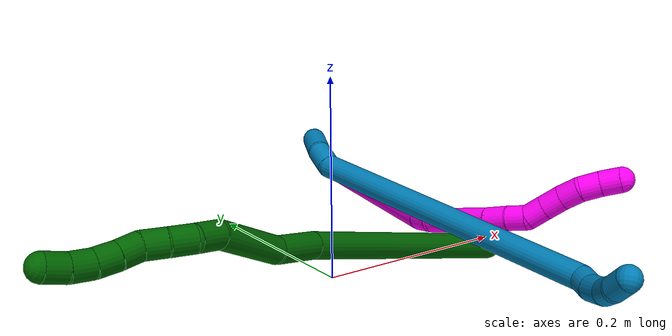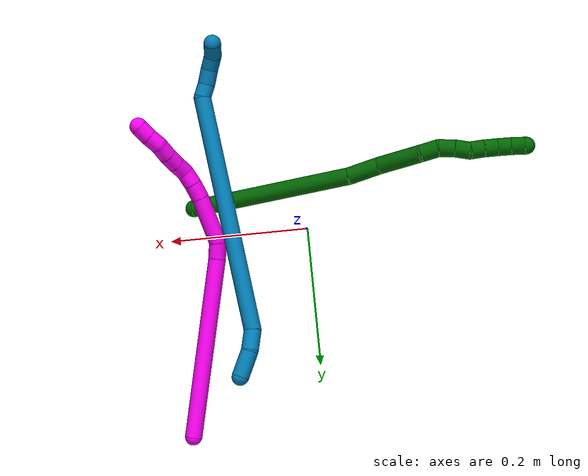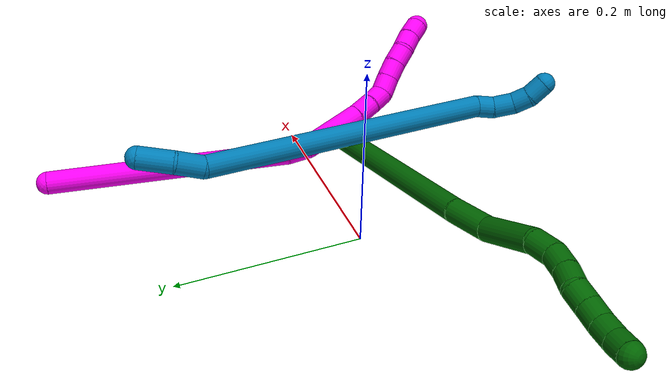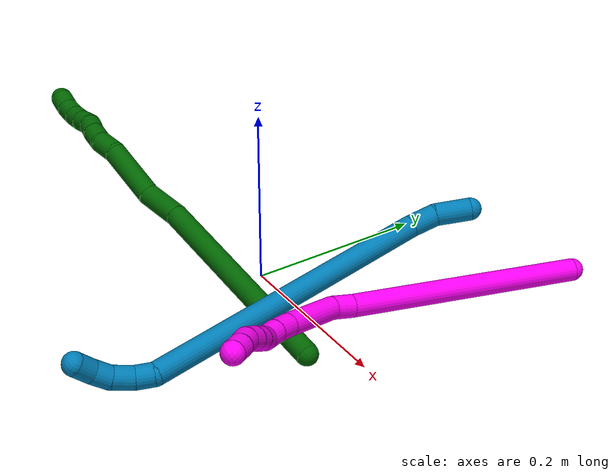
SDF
<sdf version="1.7">
 <world name="default">
  <model name="6">
   <static>0</static>
   <link name="6">
    <collision name="collision-cylinder-e_1_1_4">
     <pose>-0.021526 -0.000852 0.11647 0.007319 -0.182757 -0.000671</pose>
     <geometry><cylinder><radius>0.0125</radius><length>0.236892</length></cylinder></geometry>
     <surface>
      <friction><ode><mu>1.16</mu><mu2>1.16</mu2><slip1>0</slip1><slip2>0</slip2></ode></friction>
      <contact><ode><kp>1e+06</kp><kd>1</kd><max_vel>0</max_vel><min_depth>0.001</min_depth></ode></contact>
     </surface>
    </collision>
    <visual name="visual-cylinder-e_1_1_4">
     <pose>-0.021526 -0.000852 0.11647 0.007319 -0.182757 -0.000671</pose>
     <geometry><cylinder><radius>0.0125</radius><length>0.236892</length></cylinder></geometry>
     <material><ambient>0 0.392157 0.003922 1</ambient></material>
    </visual>
    <collision name="collision-cylinder-e_2_4_5">
     <pose>-0.046514 -0.00506 0.255559 0.147279 -0.150236 -0.011104</pose>
     <geometry><cylinder><radius>0.0125</radius><length>0.046253</length></cylinder></geometry>
     <surface>
      <friction><ode><mu>1.16</mu><mu2>1.16</mu2><slip1>0</slip1><slip2>0</slip2></ode></friction>
      <contact><ode><kp>1e+06</kp><kd>1</kd><max_vel>0</max_vel><min_depth>0.001</min_depth></ode></contact>
     </surface>
    </collision>
    <visual name="visual-cylinder-e_2_4_5">
     <pose>-0.046514 -0.00506 0.255559 0.147279 -0.150236 -0.011104</pose>
     <geometry><cylinder><radius>0.0125</radius><length>0.046253</length></cylinder></geometry>
     <material><ambient>0 0.392157 0.003922 1</ambient></material>
    </visual>
    <collision name="collision-cylinder-e_3_5_6">
     <pose>-0.049133 -0.005904 0.311502 -0.075248 0.025203 -0.000949</pose>
     <geometry><cylinder><radius>0.0125</radius><length>0.06686</length></cylinder></geometry>
     <surface>
      <friction><ode><mu>1.16</mu><mu2>1.16</mu2><slip1>0</slip1><slip2>0</slip2></ode></friction>
      <contact><ode><kp>1e+06</kp><kd>1</kd><max_vel>0</max_vel><min_depth>0.001</min_depth></ode></contact>
     </surface>
    </collision>
    <visual name="visual-cylinder-e_3_5_6">
     <pose>-0.049133 -0.005904 0.311502 -0.075248 0.025203 -0.000949</pose>
     <geometry><cylinder><radius>0.0125</radius><length>0.06686</length></cylinder></geometry>
     <material><ambient>0 0.392157 0.003922 1</ambient></material>
    </visual>
    <collision name="collision-cylinder-e_4_6_7">
     <pose>-0.050978 -0.005318 0.357113 0.155558 -0.212839 -0.01665</pose>
     <geometry><cylinder><radius>0.0125</radius><length>0.025447</length></cylinder></geometry>
     <surface>
      <friction><ode><mu>1.16</mu><mu2>1.16</mu2><slip1>0</slip1><slip2>0</slip2></ode></friction>
      <contact><ode><kp>1e+06</kp><kd>1</kd><max_vel>0</max_vel><min_depth>0.001</min_depth></ode></contact>
     </surface>
    </collision>
    <visual name="visual-cylinder-e_4_6_7">
     <pose>-0.050978 -0.005318 0.357113 0.155558 -0.212839 -0.01665</pose>
     <geometry><cylinder><radius>0.0125</radius><length>0.025447</length></cylinder></geometry>
     <material><ambient>0 0.392157 0.003922 1</ambient></material>
    </visual>
    <collision name="collision-cylinder-e_5_7_8">
     <pose>-0.058863 -0.006761 0.379531 -0.047705 -0.473453 0.011511</pose>
     <geometry><cylinder><radius>0.0125</radius><length>0.022796</length></cylinder></geometry>
     <surface>
      <friction><ode><mu>1.16</mu><mu2>1.16</mu2><slip1>0</slip1><slip2>0</slip2></ode></friction>
      <contact><ode><kp>1e+06</kp><kd>1</kd><max_vel>0</max_vel><min_depth>0.001</min_depth></ode></contact>
     </surface>
    </collision>
    <visual name="visual-cylinder-e_5_7_8">
     <pose>-0.058863 -0.006761 0.379531 -0.047705 -0.473453 0.011511</pose>
     <geometry><cylinder><radius>0.0125</radius><length>0.022796</length></cylinder></geometry>
     <material><ambient>0 0.392157 0.003922 1</ambient></material>
    </visual>
    <collision name="collision-cylinder-e_6_8_9">
     <pose>-0.069798 -0.004979 0.398463 -0.14654 -0.572903 0.043234</pose>
     <geometry><cylinder><radius>0.0125</radius><length>0.02117</length></cylinder></geometry>
     <surface>
      <friction><ode><mu>1.16</mu><mu2>1.16</mu2><slip1>0</slip1><slip2>0</slip2></ode></friction>
      <contact><ode><kp>1e+06</kp><kd>1</kd><max_vel>0</max_vel><min_depth>0.001</min_depth></ode></contact>
     </surface>
    </collision>
    <visual name="visual-cylinder-e_6_8_9">
     <pose>-0.069798 -0.004979 0.398463 -0.14654 -0.572903 0.043234</pose>
     <geometry><cylinder><radius>0.0125</radius><length>0.02117</length></cylinder></geometry>
     <material><ambient>0 0.392157 0.003922 1</ambient></material>
    </visual>
    <collision name="collision-cylinder-e_7_9_10">
     <pose>-0.080562 -0.005859 0.415634 0.254659 -0.526386 -0.068962</pose>
     <geometry><cylinder><radius>0.0125</radius><length>0.020008</length></cylinder></geometry>
     <surface>
      <friction><ode><mu>1.16</mu><mu2>1.16</mu2><slip1>0</slip1><slip2>0</slip2></ode></friction>
      <contact><ode><kp>1e+06</kp><kd>1</kd><max_vel>0</max_vel><min_depth>0.001</min_depth></ode></contact>
     </surface>
    </collision>
    <visual name="visual-cylinder-e_7_9_10">
     <pose>-0.080562 -0.005859 0.415634 0.254659 -0.526386 -0.068962</pose>
     <geometry><cylinder><radius>0.0125</radius><length>0.020008</length></cylinder></geometry>
     <material><ambient>0 0.392157 0.003922 1</ambient></material>
    </visual>
    <collision name="collision-cylinder-e_8_10_11">
     <pose>-0.090555 -0.0094 0.432595 0.157246 -0.518882 -0.041817</pose>
     <geometry><cylinder><radius>0.0125</radius><length>0.020032</length></cylinder></geometry>
     <surface>
      <friction><ode><mu>1.16</mu><mu2>1.16</mu2><slip1>0</slip1><slip2>0</slip2></ode></friction>
      <contact><ode><kp>1e+06</kp><kd>1</kd><max_vel>0</max_vel><min_depth>0.001</min_depth></ode></contact>
     </surface>
    </collision>
    <visual name="visual-cylinder-e_8_10_11">
     <pose>-0.090555 -0.0094 0.432595 0.157246 -0.518882 -0.041817</pose>
     <geometry><cylinder><radius>0.0125</radius><length>0.020032</length></cylinder></geometry>
     <material><ambient>0 0.392157 0.003922 1</ambient></material>
    </visual>
    <collision name="collision-cylinder-e_9_11_12">
     <pose>-0.099534 -0.011015 0.450497 0.02711 -0.406694 -0.00559</pose>
     <geometry><cylinder><radius>0.0125</radius><length>0.020284</length></cylinder></geometry>
     <surface>
      <friction><ode><mu>1.16</mu><mu2>1.16</mu2><slip1>0</slip1><slip2>0</slip2></ode></friction>
      <contact><ode><kp>1e+06</kp><kd>1</kd><max_vel>0</max_vel><min_depth>0.001</min_depth></ode></contact>
     </surface>
    </collision>
    <visual name="visual-cylinder-e_9_11_12">
     <pose>-0.099534 -0.011015 0.450497 0.02711 -0.406694 -0.00559</pose>
     <geometry><cylinder><radius>0.0125</radius><length>0.020284</length></cylinder></geometry>
     <material><ambient>0 0.392157 0.003922 1</ambient></material>
    </visual>
    <collision name="collision-cylinder-e_10_12_2">
     <pose>-0.106477 -0.010053 0.469428 -0.125568 -0.293515 0.018585</pose>
     <geometry><cylinder><radius>0.0125</radius><length>0.020259</length></cylinder></geometry>
     <surface>
      <friction><ode><mu>1.16</mu><mu2>1.16</mu2><slip1>0</slip1><slip2>0</slip2></ode></friction>
      <contact><ode><kp>1e+06</kp><kd>1</kd><max_vel>0</max_vel><min_depth>0.001</min_depth></ode></contact>
     </surface>
    </collision>
    <visual name="visual-cylinder-e_10_12_2">
     <pose>-0.106477 -0.010053 0.469428 -0.125568 -0.293515 0.018585</pose>
     <geometry><cylinder><radius>0.0125</radius><length>0.020259</length></cylinder></geometry>
     <material><ambient>0 0.392157 0.003922 1</ambient></material>
    </visual>
    <collision name="collision-sphere-2">
     <pose>-0.109407 -0.008838 0.479048 0 -0 0</pose>
     <geometry><sphere><radius>0.0125</radius></sphere></geometry>
     <surface>
      <friction><ode><mu>1.16</mu><mu2>1.16</mu2><slip1>0</slip1><slip2>0</slip2></ode></friction>
      <contact><ode><kp>1e+06</kp><kd>1</kd><max_vel>0</max_vel><min_depth>0.001</min_depth></ode></contact>
     </surface>
    </collision>
    <visual name="visual-sphere-2">
     <pose>-0.109407 -0.008838 0.479048 0 -0 0</pose>
     <geometry><sphere><radius>0.0125</radius></sphere></geometry>
     <material><ambient>0 0.392157 0.003922 1</ambient></material>
    </visual>
    <collision name="collision-sphere-12">
     <pose>-0.103546 -0.011267 0.459808 0 -0 0</pose>
     <geometry><sphere><radius>0.0125</radius></sphere></geometry>
     <surface>
      <friction><ode><mu>1.16</mu><mu2>1.16</mu2><slip1>0</slip1><slip2>0</slip2></ode></friction>
      <contact><ode><kp>1e+06</kp><kd>1</kd><max_vel>0</max_vel><min_depth>0.001</min_depth></ode></contact>
     </surface>
    </collision>
    <visual name="visual-sphere-12">
     <pose>-0.103546 -0.011267 0.459808 0 -0 0</pose>
     <geometry><sphere><radius>0.0125</radius></sphere></geometry>
     <material><ambient>0 0.392157 0.003922 1</ambient></material>
    </visual>
    <collision name="collision-sphere-11">
     <pose>-0.095522 -0.010762 0.441186 0 -0 0</pose>
     <geometry><sphere><radius>0.0125</radius></sphere></geometry>
     <surface>
      <friction><ode><mu>1.16</mu><mu2>1.16</mu2><slip1>0</slip1><slip2>0</slip2></ode></friction>
      <contact><ode><kp>1e+06</kp><kd>1</kd><max_vel>0</max_vel><min_depth>0.001</min_depth></ode></contact>
     </surface>
    </collision>
    <visual name="visual-sphere-11">
     <pose>-0.095522 -0.010762 0.441186 0 -0 0</pose>
     <geometry><sphere><radius>0.0125</radius></sphere></geometry>
     <material><ambient>0 0.392157 0.003922 1</ambient></material>
    </visual>
    <collision name="collision-sphere-10">
     <pose>-0.085588 -0.008038 0.424005 0 -0 0</pose>
     <geometry><sphere><radius>0.0125</radius></sphere></geometry>
     <surface>
      <friction><ode><mu>1.16</mu><mu2>1.16</mu2><slip1>0</slip1><slip2>0</slip2></ode></friction>
      <contact><ode><kp>1e+06</kp><kd>1</kd><max_vel>0</max_vel><min_depth>0.001</min_depth></ode></contact>
     </surface>
    </collision>
    <visual name="visual-sphere-10">
     <pose>-0.085588 -0.008038 0.424005 0 -0 0</pose>
     <geometry><sphere><radius>0.0125</radius></sphere></geometry>
     <material><ambient>0 0.392157 0.003922 1</ambient></material>
    </visual>
    <collision name="collision-sphere-9">
     <pose>-0.075536 -0.00368 0.407263 0 -0 0</pose>
     <geometry><sphere><radius>0.0125</radius></sphere></geometry>
     <surface>
      <friction><ode><mu>1.16</mu><mu2>1.16</mu2><slip1>0</slip1><slip2>0</slip2></ode></friction>
      <contact><ode><kp>1e+06</kp><kd>1</kd><max_vel>0</max_vel><min_depth>0.001</min_depth></ode></contact>
     </surface>
    </collision>
    <visual name="visual-sphere-9">
     <pose>-0.075536 -0.00368 0.407263 0 -0 0</pose>
     <geometry><sphere><radius>0.0125</radius></sphere></geometry>
     <material><ambient>0 0.392157 0.003922 1</ambient></material>
    </visual>
    <collision name="collision-sphere-4">
     <pose>-0.043053 -0.001705 0.23294 0 -0 0</pose>
     <geometry><sphere><radius>0.0125</radius></sphere></geometry>
     <surface>
      <friction><ode><mu>1.16</mu><mu2>1.16</mu2><slip1>0</slip1><slip2>0</slip2></ode></friction>
      <contact><ode><kp>1e+06</kp><kd>1</kd><max_vel>0</max_vel><min_depth>0.001</min_depth></ode></contact>
     </surface>
    </collision>
    <visual name="visual-sphere-4">
     <pose>-0.043053 -0.001705 0.23294 0 -0 0</pose>
     <geometry><sphere><radius>0.0125</radius></sphere></geometry>
     <material><ambient>0 0.392157 0.003922 1</ambient></material>
    </visual>
    <collision name="collision-sphere-1">
     <geometry><sphere><radius>0.0125</radius></sphere></geometry>
     <surface>
      <friction><ode><mu>1.16</mu><mu2>1.16</mu2><slip1>0</slip1><slip2>0</slip2></ode></friction>
      <contact><ode><kp>1e+06</kp><kd>1</kd><max_vel>0</max_vel><min_depth>0.001</min_depth></ode></contact>
     </surface>
    </collision>
    <visual name="visual-sphere-1">
     <geometry><sphere><radius>0.0125</radius></sphere></geometry>
     <material><ambient>0 0.392157 0.003922 1</ambient></material>
    </visual>
    <collision name="collision-sphere-8">
     <pose>-0.06406 -0.006277 0.389664 0 -0 0</pose>
     <geometry><sphere><radius>0.0125</radius></sphere></geometry>
     <surface>
      <friction><ode><mu>1.16</mu><mu2>1.16</mu2><slip1>0</slip1><slip2>0</slip2></ode></friction>
      <contact><ode><kp>1e+06</kp><kd>1</kd><max_vel>0</max_vel><min_depth>0.001</min_depth></ode></contact>
     </surface>
    </collision>
    <visual name="visual-sphere-8">
     <pose>-0.06406 -0.006277 0.389664 0 -0 0</pose>
     <geometry><sphere><radius>0.0125</radius></sphere></geometry>
     <material><ambient>0 0.392157 0.003922 1</ambient></material>
    </visual>
    <collision name="collision-sphere-5">
     <pose>-0.049976 -0.008416 0.278177 0 -0 0</pose>
     <geometry><sphere><radius>0.0125</radius></sphere></geometry>
     <surface>
      <friction><ode><mu>1.16</mu><mu2>1.16</mu2><slip1>0</slip1><slip2>0</slip2></ode></friction>
      <contact><ode><kp>1e+06</kp><kd>1</kd><max_vel>0</max_vel><min_depth>0.001</min_depth></ode></contact>
     </surface>
    </collision>
    <visual name="visual-sphere-5">
     <pose>-0.049976 -0.008416 0.278177 0 -0 0</pose>
     <geometry><sphere><radius>0.0125</radius></sphere></geometry>
     <material><ambient>0 0.392157 0.003922 1</ambient></material>
    </visual>
    <collision name="collision-sphere-6">
     <pose>-0.048291 -0.003391 0.344827 0 -0 0</pose>
     <geometry><sphere><radius>0.0125</radius></sphere></geometry>
     <surface>
      <friction><ode><mu>1.16</mu><mu2>1.16</mu2><slip1>0</slip1><slip2>0</slip2></ode></friction>
      <contact><ode><kp>1e+06</kp><kd>1</kd><max_vel>0</max_vel><min_depth>0.001</min_depth></ode></contact>
     </surface>
    </collision>
    <visual name="visual-sphere-6">
     <pose>-0.048291 -0.003391 0.344827 0 -0 0</pose>
     <geometry><sphere><radius>0.0125</radius></sphere></geometry>
     <material><ambient>0 0.392157 0.003922 1</ambient></material>
    </visual>
    <collision name="collision-sphere-7">
     <pose>-0.053666 -0.007245 0.369399 0 -0 0</pose>
     <geometry><sphere><radius>0.0125</radius></sphere></geometry>
     <surface>
      <friction><ode><mu>1.16</mu><mu2>1.16</mu2><slip1>0</slip1><slip2>0</slip2></ode></friction>
      <contact><ode><kp>1e+06</kp><kd>1</kd><max_vel>0</max_vel><min_depth>0.001</min_depth></ode></contact>
     </surface>
    </collision>
    <visual name="visual-sphere-7">
     <pose>-0.053666 -0.007245 0.369399 0 -0 0</pose>
     <geometry><sphere><radius>0.0125</radius></sphere></geometry>
     <material><ambient>0 0.392157 0.003922 1</ambient></material>
    </visual>
    <inertial>
     <pose>-0.044509 -0.003916 0.244085 0 -0 0</pose>
     <mass>0.5</mass>
     <inertia>
      <ixx>0.001137</ixx>
      <ixy>0</ixy>
      <ixz>0</ixz>
      <iyy>0.001164</iyy>
      <iyz>0</iyz>
      <izz>0.000254</izz>
     </inertia>
    </inertial>
   </link>
   <pose>0.161756 -0.045143 0.011546 1.00038 -0.789061 -0.928569</pose>
  </model>
  <model name="9">
   <static>0</static>
   <link name="9">
    <collision name="collision-cylinder-e_1_1_4">
     <pose>-0.006062 -0.014725 -0.011557 2.23624 -0.313209 -0.627828</pose>
     <geometry><cylinder><radius>0.0125</radius><length>0.039351</length></cylinder></geometry>
     <surface>
      <friction><ode><mu>1.16</mu><mu2>1.16</mu2><slip1>0</slip1><slip2>0</slip2></ode></friction>
      <contact><ode><kp>1e+06</kp><kd>1</kd><max_vel>0</max_vel><min_depth>0.001</min_depth></ode></contact>
     </surface>
    </collision>
    <visual name="visual-cylinder-e_1_1_4">
     <pose>-0.006062 -0.014725 -0.011557 2.23624 -0.313209 -0.627828</pose>
     <geometry><cylinder><radius>0.0125</radius><length>0.039351</length></cylinder></geometry>
     <material><ambient>0 0.490196 0.709804 1</ambient></material>
    </visual>
    <collision name="collision-cylinder-e_2_4_5">
     <pose>-0.012639 -0.040957 -0.033009 2.28097 -0.033903 -0.073837</pose>
     <geometry><cylinder><radius>0.0125</radius><length>0.030372</length></cylinder></geometry>
     <surface>
      <friction><ode><mu>1.16</mu><mu2>1.16</mu2><slip1>0</slip1><slip2>0</slip2></ode></friction>
      <contact><ode><kp>1e+06</kp><kd>1</kd><max_vel>0</max_vel><min_depth>0.001</min_depth></ode></contact>
     </surface>
    </collision>
    <visual name="visual-cylinder-e_2_4_5">
     <pose>-0.012639 -0.040957 -0.033009 2.28097 -0.033903 -0.073837</pose>
     <geometry><cylinder><radius>0.0125</radius><length>0.030372</length></cylinder></geometry>
     <material><ambient>0 0.490196 0.709804 1</ambient></material>
    </visual>
    <collision name="collision-cylinder-e_3_5_6">
     <pose>0.01409 -0.211308 -0.103295 1.93411 0.158966 0.229973</pose>
     <geometry><cylinder><radius>0.0125</radius><length>0.344211</length></cylinder></geometry>
     <surface>
      <friction><ode><mu>1.16</mu><mu2>1.16</mu2><slip1>0</slip1><slip2>0</slip2></ode></friction>
      <contact><ode><kp>1e+06</kp><kd>1</kd><max_vel>0</max_vel><min_depth>0.001</min_depth></ode></contact>
     </surface>
    </collision>
    <visual name="visual-cylinder-e_3_5_6">
     <pose>0.01409 -0.211308 -0.103295 1.93411 0.158966 0.229973</pose>
     <geometry><cylinder><radius>0.0125</radius><length>0.344211</length></cylinder></geometry>
     <material><ambient>0 0.490196 0.709804 1</ambient></material>
    </visual>
    <collision name="collision-cylinder-e_4_6_7">
     <pose>0.038399 -0.378078 -0.169158 2.17504 -0.295773 -0.553201</pose>
     <geometry><cylinder><radius>0.0125</radius><length>0.020139</length></cylinder></geometry>
     <surface>
      <friction><ode><mu>1.16</mu><mu2>1.16</mu2><slip1>0</slip1><slip2>0</slip2></ode></friction>
      <contact><ode><kp>1e+06</kp><kd>1</kd><max_vel>0</max_vel><min_depth>0.001</min_depth></ode></contact>
     </surface>
    </collision>
    <visual name="visual-cylinder-e_4_6_7">
     <pose>0.038399 -0.378078 -0.169158 2.17504 -0.295773 -0.553201</pose>
     <geometry><cylinder><radius>0.0125</radius><length>0.020139</length></cylinder></geometry>
     <material><ambient>0 0.490196 0.709804 1</ambient></material>
    </visual>
    <collision name="collision-cylinder-e_5_7_8">
     <pose>0.031158 -0.396637 -0.178032 1.88039 -0.368088 -0.499335</pose>
     <geometry><cylinder><radius>0.0125</radius><length>0.02393</length></cylinder></geometry>
     <surface>
      <friction><ode><mu>1.16</mu><mu2>1.16</mu2><slip1>0</slip1><slip2>0</slip2></ode></friction>
      <contact><ode><kp>1e+06</kp><kd>1</kd><max_vel>0</max_vel><min_depth>0.001</min_depth></ode></contact>
     </surface>
    </collision>
    <visual name="visual-cylinder-e_5_7_8">
     <pose>0.031158 -0.396637 -0.178032 1.88039 -0.368088 -0.499335</pose>
     <geometry><cylinder><radius>0.0125</radius><length>0.02393</length></cylinder></geometry>
     <material><ambient>0 0.490196 0.709804 1</ambient></material>
    </visual>
    <collision name="collision-cylinder-e_6_8_9">
     <pose>0.021405 -0.415819 -0.181642 1.59524 -0.567173 -0.580441</pose>
     <geometry><cylinder><radius>0.0125</radius><length>0.02028</length></cylinder></geometry>
     <surface>
      <friction><ode><mu>1.16</mu><mu2>1.16</mu2><slip1>0</slip1><slip2>0</slip2></ode></friction>
      <contact><ode><kp>1e+06</kp><kd>1</kd><max_vel>0</max_vel><min_depth>0.001</min_depth></ode></contact>
     </surface>
    </collision>
    <visual name="visual-cylinder-e_6_8_9">
     <pose>0.021405 -0.415819 -0.181642 1.59524 -0.567173 -0.580441</pose>
     <geometry><cylinder><radius>0.0125</radius><length>0.02028</length></cylinder></geometry>
     <material><ambient>0 0.490196 0.709804 1</ambient></material>
    </visual>
    <collision name="collision-cylinder-e_7_9_2">
     <pose>0.011682 -0.433932 -0.178991 1.28019 -0.404659 -0.303183</pose>
     <geometry><cylinder><radius>0.0125</radius><length>0.021717</length></cylinder></geometry>
     <surface>
      <friction><ode><mu>1.16</mu><mu2>1.16</mu2><slip1>0</slip1><slip2>0</slip2></ode></friction>
      <contact><ode><kp>1e+06</kp><kd>1</kd><max_vel>0</max_vel><min_depth>0.001</min_depth></ode></contact>
     </surface>
    </collision>
    <visual name="visual-cylinder-e_7_9_2">
     <pose>0.011682 -0.433932 -0.178991 1.28019 -0.404659 -0.303183</pose>
     <geometry><cylinder><radius>0.0125</radius><length>0.021717</length></cylinder></geometry>
     <material><ambient>0 0.490196 0.709804 1</ambient></material>
    </visual>
    <collision name="collision-sphere-2">
     <pose>0.007407 -0.443495 -0.176131 0 -0 0</pose>
     <geometry><sphere><radius>0.0125</radius></sphere></geometry>
     <surface>
      <friction><ode><mu>1.16</mu><mu2>1.16</mu2><slip1>0</slip1><slip2>0</slip2></ode></friction>
      <contact><ode><kp>1e+06</kp><kd>1</kd><max_vel>0</max_vel><min_depth>0.001</min_depth></ode></contact>
     </surface>
    </collision>
    <visual name="visual-sphere-2">
     <pose>0.007407 -0.443495 -0.176131 0 -0 0</pose>
     <geometry><sphere><radius>0.0125</radius></sphere></geometry>
     <material><ambient>0 0.490196 0.709804 1</ambient></material>
    </visual>
    <collision name="collision-sphere-9">
     <pose>0.015958 -0.424369 -0.181851 0 -0 0</pose>
     <geometry><sphere><radius>0.0125</radius></sphere></geometry>
     <surface>
      <friction><ode><mu>1.16</mu><mu2>1.16</mu2><slip1>0</slip1><slip2>0</slip2></ode></friction>
      <contact><ode><kp>1e+06</kp><kd>1</kd><max_vel>0</max_vel><min_depth>0.001</min_depth></ode></contact>
     </surface>
    </collision>
    <visual name="visual-sphere-9">
     <pose>0.015958 -0.424369 -0.181851 0 -0 0</pose>
     <geometry><sphere><radius>0.0125</radius></sphere></geometry>
     <material><ambient>0 0.490196 0.709804 1</ambient></material>
    </visual>
    <collision name="collision-sphere-4">
     <pose>-0.012124 -0.029449 -0.023113 0 -0 0</pose>
     <geometry><sphere><radius>0.0125</radius></sphere></geometry>
     <surface>
      <friction><ode><mu>1.16</mu><mu2>1.16</mu2><slip1>0</slip1><slip2>0</slip2></ode></friction>
      <contact><ode><kp>1e+06</kp><kd>1</kd><max_vel>0</max_vel><min_depth>0.001</min_depth></ode></contact>
     </surface>
    </collision>
    <visual name="visual-sphere-4">
     <pose>-0.012124 -0.029449 -0.023113 0 -0 0</pose>
     <geometry><sphere><radius>0.0125</radius></sphere></geometry>
     <material><ambient>0 0.490196 0.709804 1</ambient></material>
    </visual>
    <collision name="collision-sphere-1">
     <geometry><sphere><radius>0.0125</radius></sphere></geometry>
     <surface>
      <friction><ode><mu>1.16</mu><mu2>1.16</mu2><slip1>0</slip1><slip2>0</slip2></ode></friction>
      <contact><ode><kp>1e+06</kp><kd>1</kd><max_vel>0</max_vel><min_depth>0.001</min_depth></ode></contact>
     </surface>
    </collision>
    <visual name="visual-sphere-1">
     <geometry><sphere><radius>0.0125</radius></sphere></geometry>
     <material><ambient>0 0.490196 0.709804 1</ambient></material>
    </visual>
    <collision name="collision-sphere-8">
     <pose>0.026853 -0.40727 -0.181433 0 -0 0</pose>
     <geometry><sphere><radius>0.0125</radius></sphere></geometry>
     <surface>
      <friction><ode><mu>1.16</mu><mu2>1.16</mu2><slip1>0</slip1><slip2>0</slip2></ode></friction>
      <contact><ode><kp>1e+06</kp><kd>1</kd><max_vel>0</max_vel><min_depth>0.001</min_depth></ode></contact>
     </surface>
    </collision>
    <visual name="visual-sphere-8">
     <pose>0.026853 -0.40727 -0.181433 0 -0 0</pose>
     <geometry><sphere><radius>0.0125</radius></sphere></geometry>
     <material><ambient>0 0.490196 0.709804 1</ambient></material>
    </visual>
    <collision name="collision-sphere-5">
     <pose>-0.013154 -0.052466 -0.042904 0 -0 0</pose>
     <geometry><sphere><radius>0.0125</radius></sphere></geometry>
     <surface>
      <friction><ode><mu>1.16</mu><mu2>1.16</mu2><slip1>0</slip1><slip2>0</slip2></ode></friction>
      <contact><ode><kp>1e+06</kp><kd>1</kd><max_vel>0</max_vel><min_depth>0.001</min_depth></ode></contact>
     </surface>
    </collision>
    <visual name="visual-sphere-5">
     <pose>-0.013154 -0.052466 -0.042904 0 -0 0</pose>
     <geometry><sphere><radius>0.0125</radius></sphere></geometry>
     <material><ambient>0 0.490196 0.709804 1</ambient></material>
    </visual>
    <collision name="collision-sphere-6">
     <pose>0.041334 -0.370151 -0.163686 0 -0 0</pose>
     <geometry><sphere><radius>0.0125</radius></sphere></geometry>
     <surface>
      <friction><ode><mu>1.16</mu><mu2>1.16</mu2><slip1>0</slip1><slip2>0</slip2></ode></friction>
      <contact><ode><kp>1e+06</kp><kd>1</kd><max_vel>0</max_vel><min_depth>0.001</min_depth></ode></contact>
     </surface>
    </collision>
    <visual name="visual-sphere-6">
     <pose>0.041334 -0.370151 -0.163686 0 -0 0</pose>
     <geometry><sphere><radius>0.0125</radius></sphere></geometry>
     <material><ambient>0 0.490196 0.709804 1</ambient></material>
    </visual>
    <collision name="collision-sphere-7">
     <pose>0.035464 -0.386005 -0.174631 0 -0 0</pose>
     <geometry><sphere><radius>0.0125</radius></sphere></geometry>
     <surface>
      <friction><ode><mu>1.16</mu><mu2>1.16</mu2><slip1>0</slip1><slip2>0</slip2></ode></friction>
      <contact><ode><kp>1e+06</kp><kd>1</kd><max_vel>0</max_vel><min_depth>0.001</min_depth></ode></contact>
     </surface>
    </collision>
    <visual name="visual-sphere-7">
     <pose>0.035464 -0.386005 -0.174631 0 -0 0</pose>
     <geometry><sphere><radius>0.0125</radius></sphere></geometry>
     <material><ambient>0 0.490196 0.709804 1</ambient></material>
    </visual>
    <inertial>
     <pose>0.012868 -0.21904 -0.104501 0 -0 0</pose>
     <mass>0.5</mass>
     <inertia>
      <ixx>0.004056</ixx>
      <ixy>0</ixy>
      <ixz>0</ixz>
      <iyy>-0.000343</iyy>
      <iyz>0</iyz>
      <izz>0.002613</izz>
     </inertia>
    </inertial>
   </link>
   <pose>0.114389 0.200727 0.078989 -0.346277 0.52106 -0.009274</pose>
  </model>
  <model name="10">
   <static>0</static>
   <link name="10">
    <collision name="collision-cylinder-e_1_1_4">
     <pose>-0.059693 -0.070791 -0.093291 2.49248 -0.471396 -1.23985</pose>
     <geometry><cylinder><radius>0.0125</radius><length>0.262891</length></cylinder></geometry>
     <surface>
      <friction><ode><mu>1.16</mu><mu2>1.16</mu2><slip1>0</slip1><slip2>0</slip2></ode></friction>
      <contact><ode><kp>1e+06</kp><kd>1</kd><max_vel>0</max_vel><min_depth>0.001</min_depth></ode></contact>
     </surface>
    </collision>
    <visual name="visual-cylinder-e_1_1_4">
     <pose>-0.059693 -0.070791 -0.093291 2.49248 -0.471396 -1.23985</pose>
     <geometry><cylinder><radius>0.0125</radius><length>0.262891</length></cylinder></geometry>
     <material><ambient>1 0 0.964706 1</ambient></material>
    </visual>
    <collision name="collision-cylinder-e_2_4_5">
     <pose>-0.125052 -0.149487 -0.193728 2.30569 -0.488606 -1.02295</pose>
     <geometry><cylinder><radius>0.0125</radius><length>0.024137</length></cylinder></geometry>
     <surface>
      <friction><ode><mu>1.16</mu><mu2>1.16</mu2><slip1>0</slip1><slip2>0</slip2></ode></friction>
      <contact><ode><kp>1e+06</kp><kd>1</kd><max_vel>0</max_vel><min_depth>0.001</min_depth></ode></contact>
     </surface>
    </collision>
    <visual name="visual-cylinder-e_2_4_5">
     <pose>-0.125052 -0.149487 -0.193728 2.30569 -0.488606 -1.02295</pose>
     <geometry><cylinder><radius>0.0125</radius><length>0.024137</length></cylinder></geometry>
     <material><ambient>1 0 0.964706 1</ambient></material>
    </visual>
    <collision name="collision-cylinder-e_3_5_6">
     <pose>-0.136757 -0.187986 -0.216357 2.03935 -0.17437 -0.282517</pose>
     <geometry><cylinder><radius>0.0125</radius><length>0.069632</length></cylinder></geometry>
     <surface>
      <friction><ode><mu>1.16</mu><mu2>1.16</mu2><slip1>0</slip1><slip2>0</slip2></ode></friction>
      <contact><ode><kp>1e+06</kp><kd>1</kd><max_vel>0</max_vel><min_depth>0.001</min_depth></ode></contact>
     </surface>
    </collision>
    <visual name="visual-cylinder-e_3_5_6">
     <pose>-0.136757 -0.187986 -0.216357 2.03935 -0.17437 -0.282517</pose>
     <geometry><cylinder><radius>0.0125</radius><length>0.069632</length></cylinder></geometry>
     <material><ambient>1 0 0.964706 1</ambient></material>
    </visual>
    <collision name="collision-cylinder-e_4_6_7">
     <pose>-0.143901 -0.229285 -0.236089 1.94846 -0.095603 -0.140653</pose>
     <geometry><cylinder><radius>0.0125</radius><length>0.023143</length></cylinder></geometry>
     <surface>
      <friction><ode><mu>1.16</mu><mu2>1.16</mu2><slip1>0</slip1><slip2>0</slip2></ode></friction>
      <contact><ode><kp>1e+06</kp><kd>1</kd><max_vel>0</max_vel><min_depth>0.001</min_depth></ode></contact>
     </surface>
    </collision>
    <visual name="visual-cylinder-e_4_6_7">
     <pose>-0.143901 -0.229285 -0.236089 1.94846 -0.095603 -0.140653</pose>
     <geometry><cylinder><radius>0.0125</radius><length>0.023143</length></cylinder></geometry>
     <material><ambient>1 0 0.964706 1</ambient></material>
    </visual>
    <collision name="collision-cylinder-e_5_7_8">
     <pose>-0.144927 -0.249384 -0.243992 1.94196 0.007799 0.011404</pose>
     <geometry><cylinder><radius>0.0125</radius><length>0.020156</length></cylinder></geometry>
     <surface>
      <friction><ode><mu>1.16</mu><mu2>1.16</mu2><slip1>0</slip1><slip2>0</slip2></ode></friction>
      <contact><ode><kp>1e+06</kp><kd>1</kd><max_vel>0</max_vel><min_depth>0.001</min_depth></ode></contact>
     </surface>
    </collision>
    <visual name="visual-cylinder-e_5_7_8">
     <pose>-0.144927 -0.249384 -0.243992 1.94196 0.007799 0.011404</pose>
     <geometry><cylinder><radius>0.0125</radius><length>0.020156</length></cylinder></geometry>
     <material><ambient>1 0 0.964706 1</ambient></material>
    </visual>
    <collision name="collision-cylinder-e_6_8_9">
     <pose>-0.145713 -0.268682 -0.246574 1.46288 -0.086514 -0.077657</pose>
     <geometry><cylinder><radius>0.0125</radius><length>0.020003</length></cylinder></geometry>
     <surface>
      <friction><ode><mu>1.16</mu><mu2>1.16</mu2><slip1>0</slip1><slip2>0</slip2></ode></friction>
      <contact><ode><kp>1e+06</kp><kd>1</kd><max_vel>0</max_vel><min_depth>0.001</min_depth></ode></contact>
     </surface>
    </collision>
    <visual name="visual-cylinder-e_6_8_9">
     <pose>-0.145713 -0.268682 -0.246574 1.46288 -0.086514 -0.077657</pose>
     <geometry><cylinder><radius>0.0125</radius><length>0.020003</length></cylinder></geometry>
     <material><ambient>1 0 0.964706 1</ambient></material>
    </visual>
    <collision name="collision-cylinder-e_7_9_10">
     <pose>-0.147884 -0.288493 -0.244797 1.49985 -0.130889 -0.12194</pose>
     <geometry><cylinder><radius>0.0125</radius><length>0.020031</length></cylinder></geometry>
     <surface>
      <friction><ode><mu>1.16</mu><mu2>1.16</mu2><slip1>0</slip1><slip2>0</slip2></ode></friction>
      <contact><ode><kp>1e+06</kp><kd>1</kd><max_vel>0</max_vel><min_depth>0.001</min_depth></ode></contact>
     </surface>
    </collision>
    <visual name="visual-cylinder-e_7_9_10">
     <pose>-0.147884 -0.288493 -0.244797 1.49985 -0.130889 -0.12194</pose>
     <geometry><cylinder><radius>0.0125</radius><length>0.020031</length></cylinder></geometry>
     <material><ambient>1 0 0.964706 1</ambient></material>
    </visual>
    <collision name="collision-cylinder-e_8_10_11">
     <pose>-0.150671 -0.308286 -0.244395 1.60129 -0.14849 -0.153071</pose>
     <geometry><cylinder><radius>0.0125</radius><length>0.020006</length></cylinder></geometry>
     <surface>
      <friction><ode><mu>1.16</mu><mu2>1.16</mu2><slip1>0</slip1><slip2>0</slip2></ode></friction>
      <contact><ode><kp>1e+06</kp><kd>1</kd><max_vel>0</max_vel><min_depth>0.001</min_depth></ode></contact>
     </surface>
    </collision>
    <visual name="visual-cylinder-e_8_10_11">
     <pose>-0.150671 -0.308286 -0.244395 1.60129 -0.14849 -0.153071</pose>
     <geometry><cylinder><radius>0.0125</radius><length>0.020006</length></cylinder></geometry>
     <material><ambient>1 0 0.964706 1</ambient></material>
    </visual>
    <collision name="collision-cylinder-e_9_11_12">
     <pose>-0.150783 -0.32805 -0.245462 1.64815 0.137297 0.148311</pose>
     <geometry><cylinder><radius>0.0125</radius><length>0.02</length></cylinder></geometry>
     <surface>
      <friction><ode><mu>1.16</mu><mu2>1.16</mu2><slip1>0</slip1><slip2>0</slip2></ode></friction>
      <contact><ode><kp>1e+06</kp><kd>1</kd><max_vel>0</max_vel><min_depth>0.001</min_depth></ode></contact>
     </surface>
    </collision>
    <visual name="visual-cylinder-e_9_11_12">
     <pose>-0.150783 -0.32805 -0.245462 1.64815 0.137297 0.148311</pose>
     <geometry><cylinder><radius>0.0125</radius><length>0.02</length></cylinder></geometry>
     <material><ambient>1 0 0.964706 1</ambient></material>
    </visual>
    <collision name="collision-cylinder-e_10_12_2">
     <pose>-0.148488 -0.347723 -0.248013 1.75115 0.092752 0.111158</pose>
     <geometry><cylinder><radius>0.0125</radius><length>0.020001</length></cylinder></geometry>
     <surface>
      <friction><ode><mu>1.16</mu><mu2>1.16</mu2><slip1>0</slip1><slip2>0</slip2></ode></friction>
      <contact><ode><kp>1e+06</kp><kd>1</kd><max_vel>0</max_vel><min_depth>0.001</min_depth></ode></contact>
     </surface>
    </collision>
    <visual name="visual-cylinder-e_10_12_2">
     <pose>-0.148488 -0.347723 -0.248013 1.75115 0.092752 0.111158</pose>
     <geometry><cylinder><radius>0.0125</radius><length>0.020001</length></cylinder></geometry>
     <material><ambient>1 0 0.964706 1</ambient></material>
    </visual>
    <collision name="collision-sphere-2">
     <pose>-0.147561 -0.357519 -0.249799 0 -0 0</pose>
     <geometry><sphere><radius>0.0125</radius></sphere></geometry>
     <surface>
      <friction><ode><mu>1.16</mu><mu2>1.16</mu2><slip1>0</slip1><slip2>0</slip2></ode></friction>
      <contact><ode><kp>1e+06</kp><kd>1</kd><max_vel>0</max_vel><min_depth>0.001</min_depth></ode></contact>
     </surface>
    </collision>
    <visual name="visual-sphere-2">
     <pose>-0.147561 -0.357519 -0.249799 0 -0 0</pose>
     <geometry><sphere><radius>0.0125</radius></sphere></geometry>
     <material><ambient>1 0 0.964706 1</ambient></material>
    </visual>
    <collision name="collision-sphere-12">
     <pose>-0.149414 -0.337927 -0.246227 0 -0 0</pose>
     <geometry><sphere><radius>0.0125</radius></sphere></geometry>
     <surface>
      <friction><ode><mu>1.16</mu><mu2>1.16</mu2><slip1>0</slip1><slip2>0</slip2></ode></friction>
      <contact><ode><kp>1e+06</kp><kd>1</kd><max_vel>0</max_vel><min_depth>0.001</min_depth></ode></contact>
     </surface>
    </collision>
    <visual name="visual-sphere-12">
     <pose>-0.149414 -0.337927 -0.246227 0 -0 0</pose>
     <geometry><sphere><radius>0.0125</radius></sphere></geometry>
     <material><ambient>1 0 0.964706 1</ambient></material>
    </visual>
    <collision name="collision-sphere-11">
     <pose>-0.152151 -0.318174 -0.244696 0 -0 0</pose>
     <geometry><sphere><radius>0.0125</radius></sphere></geometry>
     <surface>
      <friction><ode><mu>1.16</mu><mu2>1.16</mu2><slip1>0</slip1><slip2>0</slip2></ode></friction>
      <contact><ode><kp>1e+06</kp><kd>1</kd><max_vel>0</max_vel><min_depth>0.001</min_depth></ode></contact>
     </surface>
    </collision>
    <visual name="visual-sphere-11">
     <pose>-0.152151 -0.318174 -0.244696 0 -0 0</pose>
     <geometry><sphere><radius>0.0125</radius></sphere></geometry>
     <material><ambient>1 0 0.964706 1</ambient></material>
    </visual>
    <collision name="collision-sphere-10">
     <pose>-0.149191 -0.298397 -0.244093 0 -0 0</pose>
     <geometry><sphere><radius>0.0125</radius></sphere></geometry>
     <surface>
      <friction><ode><mu>1.16</mu><mu2>1.16</mu2><slip1>0</slip1><slip2>0</slip2></ode></friction>
      <contact><ode><kp>1e+06</kp><kd>1</kd><max_vel>0</max_vel><min_depth>0.001</min_depth></ode></contact>
     </surface>
    </collision>
    <visual name="visual-sphere-10">
     <pose>-0.149191 -0.298397 -0.244093 0 -0 0</pose>
     <geometry><sphere><radius>0.0125</radius></sphere></geometry>
     <material><ambient>1 0 0.964706 1</ambient></material>
    </visual>
    <collision name="collision-sphere-9">
     <pose>-0.146577 -0.278588 -0.245501 0 -0 0</pose>
     <geometry><sphere><radius>0.0125</radius></sphere></geometry>
     <surface>
      <friction><ode><mu>1.16</mu><mu2>1.16</mu2><slip1>0</slip1><slip2>0</slip2></ode></friction>
      <contact><ode><kp>1e+06</kp><kd>1</kd><max_vel>0</max_vel><min_depth>0.001</min_depth></ode></contact>
     </surface>
    </collision>
    <visual name="visual-sphere-9">
     <pose>-0.146577 -0.278588 -0.245501 0 -0 0</pose>
     <geometry><sphere><radius>0.0125</radius></sphere></geometry>
     <material><ambient>1 0 0.964706 1</ambient></material>
    </visual>
    <collision name="collision-sphere-4">
     <pose>-0.119387 -0.141581 -0.186583 0 -0 0</pose>
     <geometry><sphere><radius>0.0125</radius></sphere></geometry>
     <surface>
      <friction><ode><mu>1.16</mu><mu2>1.16</mu2><slip1>0</slip1><slip2>0</slip2></ode></friction>
      <contact><ode><kp>1e+06</kp><kd>1</kd><max_vel>0</max_vel><min_depth>0.001</min_depth></ode></contact>
     </surface>
    </collision>
    <visual name="visual-sphere-4">
     <pose>-0.119387 -0.141581 -0.186583 0 -0 0</pose>
     <geometry><sphere><radius>0.0125</radius></sphere></geometry>
     <material><ambient>1 0 0.964706 1</ambient></material>
    </visual>
    <collision name="collision-sphere-1">
     <geometry><sphere><radius>0.0125</radius></sphere></geometry>
     <surface>
      <friction><ode><mu>1.16</mu><mu2>1.16</mu2><slip1>0</slip1><slip2>0</slip2></ode></friction>
      <contact><ode><kp>1e+06</kp><kd>1</kd><max_vel>0</max_vel><min_depth>0.001</min_depth></ode></contact>
     </surface>
    </collision>
    <visual name="visual-sphere-1">
     <geometry><sphere><radius>0.0125</radius></sphere></geometry>
     <material><ambient>1 0 0.964706 1</ambient></material>
    </visual>
    <collision name="collision-sphere-8">
     <pose>-0.144849 -0.258775 -0.247647 0 -0 0</pose>
     <geometry><sphere><radius>0.0125</radius></sphere></geometry>
     <surface>
      <friction><ode><mu>1.16</mu><mu2>1.16</mu2><slip1>0</slip1><slip2>0</slip2></ode></friction>
      <contact><ode><kp>1e+06</kp><kd>1</kd><max_vel>0</max_vel><min_depth>0.001</min_depth></ode></contact>
     </surface>
    </collision>
    <visual name="visual-sphere-8">
     <pose>-0.144849 -0.258775 -0.247647 0 -0 0</pose>
     <geometry><sphere><radius>0.0125</radius></sphere></geometry>
     <material><ambient>1 0 0.964706 1</ambient></material>
    </visual>
    <collision name="collision-sphere-5">
     <pose>-0.130716 -0.157393 -0.200873 0 -0 0</pose>
     <geometry><sphere><radius>0.0125</radius></sphere></geometry>
     <surface>
      <friction><ode><mu>1.16</mu><mu2>1.16</mu2><slip1>0</slip1><slip2>0</slip2></ode></friction>
      <contact><ode><kp>1e+06</kp><kd>1</kd><max_vel>0</max_vel><min_depth>0.001</min_depth></ode></contact>
     </surface>
    </collision>
    <visual name="visual-sphere-5">
     <pose>-0.130716 -0.157393 -0.200873 0 -0 0</pose>
     <geometry><sphere><radius>0.0125</radius></sphere></geometry>
     <material><ambient>1 0 0.964706 1</ambient></material>
    </visual>
    <collision name="collision-sphere-6">
     <pose>-0.142797 -0.218578 -0.231842 0 -0 0</pose>
     <geometry><sphere><radius>0.0125</radius></sphere></geometry>
     <surface>
      <friction><ode><mu>1.16</mu><mu2>1.16</mu2><slip1>0</slip1><slip2>0</slip2></ode></friction>
      <contact><ode><kp>1e+06</kp><kd>1</kd><max_vel>0</max_vel><min_depth>0.001</min_depth></ode></contact>
     </surface>
    </collision>
    <visual name="visual-sphere-6">
     <pose>-0.142797 -0.218578 -0.231842 0 -0 0</pose>
     <geometry><sphere><radius>0.0125</radius></sphere></geometry>
     <material><ambient>1 0 0.964706 1</ambient></material>
    </visual>
    <collision name="collision-sphere-7">
     <pose>-0.145006 -0.239992 -0.240337 0 -0 0</pose>
     <geometry><sphere><radius>0.0125</radius></sphere></geometry>
     <surface>
      <friction><ode><mu>1.16</mu><mu2>1.16</mu2><slip1>0</slip1><slip2>0</slip2></ode></friction>
      <contact><ode><kp>1e+06</kp><kd>1</kd><max_vel>0</max_vel><min_depth>0.001</min_depth></ode></contact>
     </surface>
    </collision>
    <visual name="visual-sphere-7">
     <pose>-0.145006 -0.239992 -0.240337 0 -0 0</pose>
     <geometry><sphere><radius>0.0125</radius></sphere></geometry>
     <material><ambient>1 0 0.964706 1</ambient></material>
    </visual>
    <inertial>
     <pose>-0.098724 -0.152956 -0.158487 0 -0 0</pose>
     <mass>0.5</mass>
     <inertia>
      <ixx>-0.000824</ixx>
      <ixy>0</ixy>
      <ixz>0</ixz>
      <iyy>-0.001335</iyy>
      <iyz>0</iyz>
      <izz>0.001539</izz>
     </inertia>
    </inertial>
   </link>
   <pose>0.194521 0.285614 0.012516 -0.610315 0.640992 0.324246</pose>
  </model>
 </world>
</sdf>
